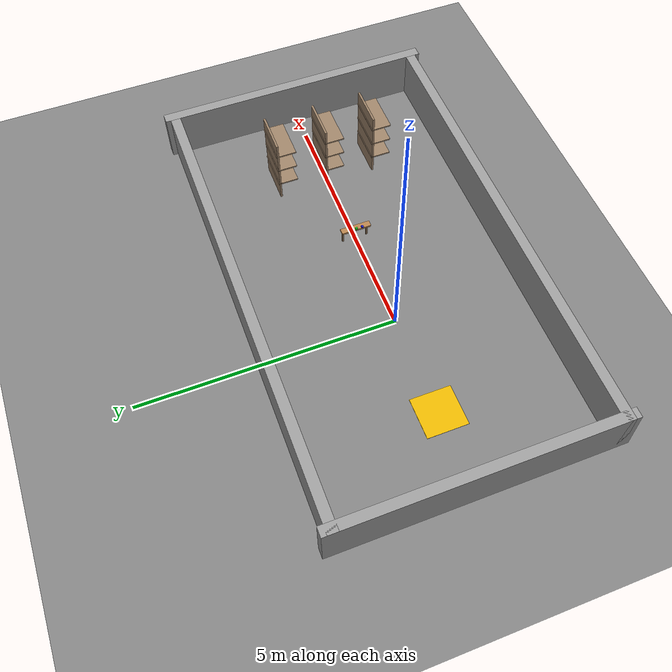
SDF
<?xml version="1.0"?>
<sdf version="1.9">
<world name="warehouse">

  <!-- ═══════ physics & rendering ════════════════════════════════════ -->
  <physics type="ode">
    <max_step_size>0.001</max_step_size>
    <real_time_factor>1.0</real_time_factor>
    <real_time_update_rate>1000</real_time_update_rate>
  </physics>

  <plugin filename="gz-sim-physics-system" name="gz::sim::systems::Physics">
  </plugin>
  <plugin filename="gz-sim-user-commands-system" name="gz::sim::systems::UserCommands"/>
  <plugin filename="gz-sim-scene-broadcaster-system" name="gz::sim::systems::SceneBroadcaster"/>
  <plugin filename="gz-sim-contact-system"     name="gz::sim::systems::Contact"/>
  <!-- Sensors must be loaded at world level for gpu_lidar / camera to function -->
  <plugin filename="gz-sim-sensors-system"     name="gz::sim::systems::Sensors">
    <render_engine>ogre2</render_engine>
  </plugin>
  <plugin filename="gz-sim-imu-system"         name="gz::sim::systems::Imu"/>

  <!-- ═══════ lighting ═════════════════════════════════════════════════ -->
  <light name="sunlight" type="directional">
    <pose>0 0 10 0 0 0</pose>
    <diffuse>0.9 0.9 0.9 1</diffuse>
    <specular>0.3 0.3 0.3 1</specular>
    <direction>-0.5 0.2 -0.9</direction>
    <cast_shadows>true</cast_shadows>
  </light>

  <light name="fill_light" type="directional">
    <pose>0 0 5 0 0 0</pose>
    <diffuse>0.4 0.4 0.5 1</diffuse>
    <specular>0.1 0.1 0.1 1</specular>
    <direction>0.5 -0.2 -0.7</direction>
    <cast_shadows>false</cast_shadows>
  </light>

  <!-- ═══════ ground plane ═══════════════════════════════════════════ -->
  <model name="ground_plane">
    <static>true</static>
    <link name="link">
      <collision name="col">
        <geometry><plane><normal>0 0 1</normal><size>30 30</size></plane></geometry>
        <surface>
          <friction><ode><mu>0.8</mu><mu2>0.8</mu2></ode></friction>
        </surface>
      </collision>
      <visual name="vis">
        <geometry><plane><normal>0 0 1</normal><size>30 30</size></plane></geometry>
        <material>
          <ambient>0.4 0.4 0.4 1</ambient>
          <diffuse>0.5 0.5 0.5 1</diffuse>
        </material>
      </visual>
    </link>
  </model>

  <!-- ═══════ dispatch zone (coloured floor patch, static) ═══════════ -->
  <model name="dispatch_zone">
    <static>true</static>
    <pose>-2.0 0 0.005 0 0 0</pose>
    <link name="link">
      <visual name="vis">
        <geometry><box><size>0.8 0.8 0.01</size></box></geometry>
        <material>
          <ambient>0.8 0.6 0.0 1</ambient>
          <diffuse>0.9 0.7 0.0 1</diffuse>
        </material>
      </visual>
    </link>
  </model>

  <!-- ═══════ shelf unit A (along +x wall) ══════════════════════════ -->
  <!-- Shelf posts -->
  <model name="shelf_A">
    <static>true</static>
    <pose>4.0 -1.0 0 0 0 0</pose>
    <link name="link">
      <!-- back panel -->
      <collision name="back">
        <pose>0 0.02 0.75 0 0 0</pose>
        <geometry><box><size>0.80 0.04 1.50</size></box></geometry>
      </collision>
      <visual name="back">
        <pose>0 0.02 0.75 0 0 0</pose>
        <geometry><box><size>0.80 0.04 1.50</size></box></geometry>
        <material><ambient>0.5 0.4 0.3 1</ambient><diffuse>0.6 0.5 0.4 1</diffuse></material>
      </visual>
      <!-- shelf level 1 -->
      <collision name="shelf1">
        <pose>0 -0.15 0.40 0 0 0</pose>
        <geometry><box><size>0.80 0.40 0.03</size></box></geometry>
      </collision>
      <visual name="shelf1">
        <pose>0 -0.15 0.40 0 0 0</pose>
        <geometry><box><size>0.80 0.40 0.03</size></box></geometry>
        <material><ambient>0.5 0.4 0.3 1</ambient><diffuse>0.6 0.5 0.4 1</diffuse></material>
      </visual>
      <!-- shelf level 2 -->
      <collision name="shelf2">
        <pose>0 -0.15 0.80 0 0 0</pose>
        <geometry><box><size>0.80 0.40 0.03</size></box></geometry>
      </collision>
      <visual name="shelf2">
        <pose>0 -0.15 0.80 0 0 0</pose>
        <geometry><box><size>0.80 0.40 0.03</size></box></geometry>
        <material><ambient>0.5 0.4 0.3 1</ambient><diffuse>0.6 0.5 0.4 1</diffuse></material>
      </visual>
      <!-- shelf level 3 -->
      <collision name="shelf3">
        <pose>0 -0.15 1.20 0 0 0</pose>
        <geometry><box><size>0.80 0.40 0.03</size></box></geometry>
      </collision>
      <visual name="shelf3">
        <pose>0 -0.15 1.20 0 0 0</pose>
        <geometry><box><size>0.80 0.40 0.03</size></box></geometry>
        <material><ambient>0.5 0.4 0.3 1</ambient><diffuse>0.6 0.5 0.4 1</diffuse></material>
      </visual>
      <inertial><mass>0.001</mass><inertia><ixx>1</ixx><iyy>1</iyy><izz>1</izz></inertia></inertial>
    </link>
  </model>

  <model name="shelf_B">
    <static>true</static>
    <pose>4.0 0.0 0 0 0 0</pose>
    <link name="link">
      <collision name="back">
        <pose>0 0.02 0.75 0 0 0</pose>
        <geometry><box><size>0.80 0.04 1.50</size></box></geometry>
      </collision>
      <visual name="back">
        <pose>0 0.02 0.75 0 0 0</pose>
        <geometry><box><size>0.80 0.04 1.50</size></box></geometry>
        <material><ambient>0.5 0.4 0.3 1</ambient><diffuse>0.6 0.5 0.4 1</diffuse></material>
      </visual>
      <collision name="shelf1">
        <pose>0 -0.15 0.40 0 0 0</pose>
        <geometry><box><size>0.80 0.40 0.03</size></box></geometry>
      </collision>
      <visual name="shelf1">
        <pose>0 -0.15 0.40 0 0 0</pose>
        <geometry><box><size>0.80 0.40 0.03</size></box></geometry>
        <material><ambient>0.5 0.4 0.3 1</ambient><diffuse>0.6 0.5 0.4 1</diffuse></material>
      </visual>
      <collision name="shelf2">
        <pose>0 -0.15 0.80 0 0 0</pose>
        <geometry><box><size>0.80 0.40 0.03</size></box></geometry>
      </collision>
      <visual name="shelf2">
        <pose>0 -0.15 0.80 0 0 0</pose>
        <geometry><box><size>0.80 0.40 0.03</size></box></geometry>
        <material><ambient>0.5 0.4 0.3 1</ambient><diffuse>0.6 0.5 0.4 1</diffuse></material>
      </visual>
      <collision name="shelf3">
        <pose>0 -0.15 1.20 0 0 0</pose>
        <geometry><box><size>0.80 0.40 0.03</size></box></geometry>
      </collision>
      <visual name="shelf3">
        <pose>0 -0.15 1.20 0 0 0</pose>
        <geometry><box><size>0.80 0.40 0.03</size></box></geometry>
        <material><ambient>0.5 0.4 0.3 1</ambient><diffuse>0.6 0.5 0.4 1</diffuse></material>
      </visual>
      <inertial><mass>0.001</mass><inertia><ixx>1</ixx><iyy>1</iyy><izz>1</izz></inertia></inertial>
    </link>
  </model>

  <model name="shelf_C">
    <static>true</static>
    <pose>4.0 1.0 0 0 0 0</pose>
    <link name="link">
      <collision name="back">
        <pose>0 0.02 0.75 0 0 0</pose>
        <geometry><box><size>0.80 0.04 1.50</size></box></geometry>
      </collision>
      <visual name="back">
        <pose>0 0.02 0.75 0 0 0</pose>
        <geometry><box><size>0.80 0.04 1.50</size></box></geometry>
        <material><ambient>0.5 0.4 0.3 1</ambient><diffuse>0.6 0.5 0.4 1</diffuse></material>
      </visual>
      <collision name="shelf1">
        <pose>0 -0.15 0.40 0 0 0</pose>
        <geometry><box><size>0.80 0.40 0.03</size></box></geometry>
      </collision>
      <visual name="shelf1">
        <pose>0 -0.15 0.40 0 0 0</pose>
        <geometry><box><size>0.80 0.40 0.03</size></box></geometry>
        <material><ambient>0.5 0.4 0.3 1</ambient><diffuse>0.6 0.5 0.4 1</diffuse></material>
      </visual>
      <collision name="shelf2">
        <pose>0 -0.15 0.80 0 0 0</pose>
        <geometry><box><size>0.80 0.40 0.03</size></box></geometry>
      </collision>
      <visual name="shelf2">
        <pose>0 -0.15 0.80 0 0 0</pose>
        <geometry><box><size>0.80 0.40 0.03</size></box></geometry>
        <material><ambient>0.5 0.4 0.3 1</ambient><diffuse>0.6 0.5 0.4 1</diffuse></material>
      </visual>
      <collision name="shelf3">
        <pose>0 -0.15 1.20 0 0 0</pose>
        <geometry><box><size>0.80 0.40 0.03</size></box></geometry>
      </collision>
      <visual name="shelf3">
        <pose>0 -0.15 1.20 0 0 0</pose>
        <geometry><box><size>0.80 0.40 0.03</size></box></geometry>
        <material><ambient>0.5 0.4 0.3 1</ambient><diffuse>0.6 0.5 0.4 1</diffuse></material>
      </visual>
      <inertial><mass>0.001</mass><inertia><ixx>1</ixx><iyy>1</iyy><izz>1</izz></inertia></inertial>
    </link>
  </model>

  <model name="pick_table">
    <static>true</static>
    <pose>2.05 0 0 0 0 0</pose>
    <link name="link">
      <!-- tabletop: 12 cm deep (x: -0.06 … +0.06), 60 cm wide -->
      <collision name="top">
        <pose>0 0 0.36 0 0 0</pose>
        <geometry><box><size>0.12 0.60 0.04</size></box></geometry>
      </collision>
      <visual name="top">
        <pose>0 0 0.36 0 0 0</pose>
        <geometry><box><size>0.12 0.60 0.04</size></box></geometry>
        <material><ambient>0.6 0.4 0.2 1</ambient><diffuse>0.7 0.5 0.3 1</diffuse></material>
      </visual>
      <!-- Front legs only — at local x=+0.05 (world x=2.10), y=±0.25 -->
      <collision name="leg_l">
        <pose>0.05  0.25 0.17 0 0 0</pose>
        <geometry><box><size>0.04 0.04 0.34</size></box></geometry>
      </collision>
      <visual name="leg_l">
        <pose>0.05  0.25 0.17 0 0 0</pose>
        <geometry><box><size>0.04 0.04 0.34</size></box></geometry>
        <material><ambient>0.4 0.3 0.2 1</ambient><diffuse>0.5 0.4 0.3 1</diffuse></material>
      </visual>
      <collision name="leg_r">
        <pose>0.05 -0.25 0.17 0 0 0</pose>
        <geometry><box><size>0.04 0.04 0.34</size></box></geometry>
      </collision>
      <visual name="leg_r">
        <pose>0.05 -0.25 0.17 0 0 0</pose>
        <geometry><box><size>0.04 0.04 0.34</size></box></geometry>
        <material><ambient>0.4 0.3 0.2 1</ambient><diffuse>0.5 0.4 0.3 1</diffuse></material>
      </visual>
      <inertial><mass>0.001</mass><inertia><ixx>1</ixx><iyy>1</iyy><izz>1</izz></inertia></inertial>
    </link>
  </model>

  <model name="red_cube">
    <pose>2.0 0.12 0.40 0 0 0</pose>
    <link name="link">
      <collision name="col">
        <geometry><box><size>0.04 0.04 0.04</size></box></geometry>
        <surface><friction><ode><mu>0.6</mu><mu2>0.6</mu2></ode></friction></surface>
      </collision>
      <visual name="vis">
        <geometry><box><size>0.04 0.04 0.04</size></box></geometry>
        <material><ambient>0.8 0.1 0.1 1</ambient><diffuse>0.9 0.1 0.1 1</diffuse></material>
      </visual>
      <inertial>
        <mass>0.05</mass>
        <!-- solid cube 4 cm: I = m*a²/6 = 0.05*0.0016/6 = 1.333e-5 -->
        <inertia>
          <ixx>1.333e-5</ixx><ixy>0</ixy><ixz>0</ixz>
          <iyy>1.333e-5</iyy><iyz>0</iyz>
          <izz>1.333e-5</izz>
        </inertia>
      </inertial>
    </link>
  </model>

  <model name="green_cube">
    <pose>2.0 0.00 0.40 0 0 0</pose>
    <link name="link">
      <collision name="col">
        <geometry><box><size>0.04 0.04 0.04</size></box></geometry>
        <surface><friction><ode><mu>0.6</mu><mu2>0.6</mu2></ode></friction></surface>
      </collision>
      <visual name="vis">
        <geometry><box><size>0.04 0.04 0.04</size></box></geometry>
        <material><ambient>0.1 0.7 0.1 1</ambient><diffuse>0.1 0.8 0.1 1</diffuse></material>
      </visual>
      <inertial>
        <mass>0.05</mass>
        <inertia>
          <ixx>1.333e-5</ixx><ixy>0</ixy><ixz>0</ixz>
          <iyy>1.333e-5</iyy><iyz>0</iyz>
          <izz>1.333e-5</izz>
        </inertia>
      </inertial>
    </link>
  </model>

  <model name="blue_cube">
    <pose>2.0 -0.12 0.40 0 0 0</pose>
    <link name="link">
      <collision name="col">
        <geometry><box><size>0.04 0.04 0.04</size></box></geometry>
        <surface><friction><ode><mu>0.6</mu><mu2>0.6</mu2></ode></friction></surface>
      </collision>
      <visual name="vis">
        <geometry><box><size>0.04 0.04 0.04</size></box></geometry>
        <material><ambient>0.1 0.1 0.8 1</ambient><diffuse>0.1 0.1 0.9 1</diffuse></material>
      </visual>
      <inertial>
        <mass>0.05</mass>
        <inertia>
          <ixx>1.333e-5</ixx><ixy>0</ixy><ixz>0</ixz>
          <iyy>1.333e-5</iyy><iyz>0</iyz>
          <izz>1.333e-5</izz>
        </inertia>
      </inertial>
    </link>
  </model>

  <!-- ═══════ perimeter walls (give LiDAR closed boundaries for SLAM) ═══ -->
  <model name="wall_south">
    <static>true</static>
    <pose>1.0 -2.6 0.5 0 0 0</pose>
    <link name="link">
      <collision name="col"><geometry><box><size>9.4 0.2 1.0</size></box></geometry></collision>
      <visual name="vis"><geometry><box><size>9.4 0.2 1.0</size></box></geometry>
        <material><ambient>0.6 0.6 0.6 1</ambient></material></visual>
    </link>
  </model>

  <model name="wall_north">
    <static>true</static>
    <pose>1.0 2.6 0.5 0 0 0</pose>
    <link name="link">
      <collision name="col"><geometry><box><size>9.4 0.2 1.0</size></box></geometry></collision>
      <visual name="vis"><geometry><box><size>9.4 0.2 1.0</size></box></geometry>
        <material><ambient>0.6 0.6 0.6 1</ambient></material></visual>
    </link>
  </model>

  <model name="wall_west">
    <static>true</static>
    <pose>-3.6 0.0 0.5 0 0 0</pose>
    <link name="link">
      <collision name="col"><geometry><box><size>0.2 5.6 1.0</size></box></geometry></collision>
      <visual name="vis"><geometry><box><size>0.2 5.6 1.0</size></box></geometry>
        <material><ambient>0.6 0.6 0.6 1</ambient></material></visual>
    </link>
  </model>

  <model name="wall_east">
    <static>true</static>
    <pose>5.6 0.0 0.5 0 0 0</pose>
    <link name="link">
      <collision name="col"><geometry><box><size>0.2 5.6 1.0</size></box></geometry></collision>
      <visual name="vis"><geometry><box><size>0.2 5.6 1.0</size></box></geometry>
        <material><ambient>0.6 0.6 0.6 1</ambient></material></visual>
    </link>
  </model>

</world>
</sdf>
